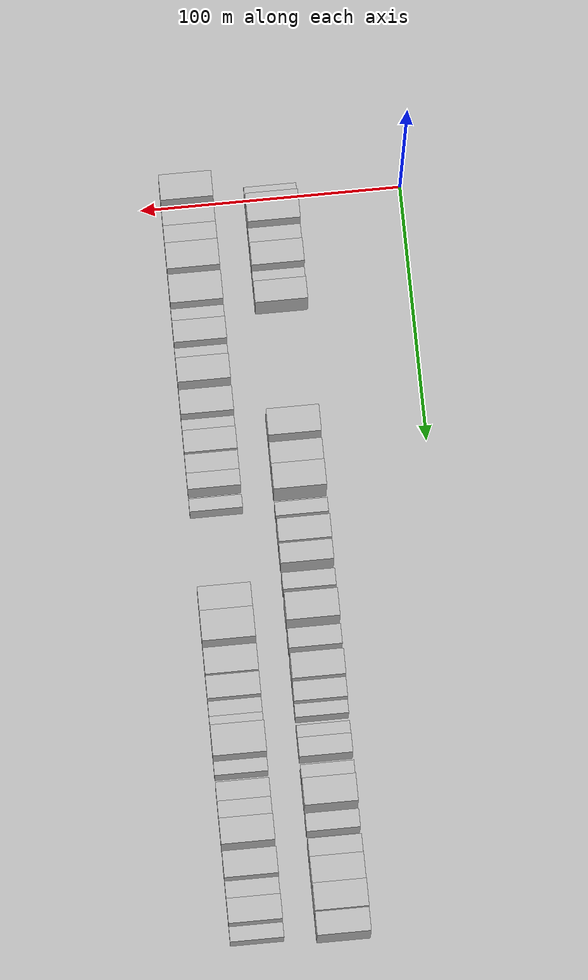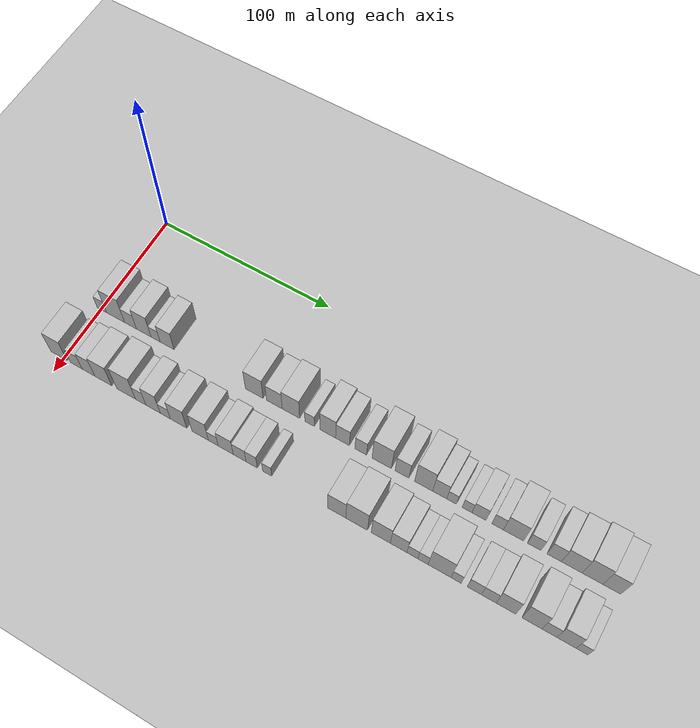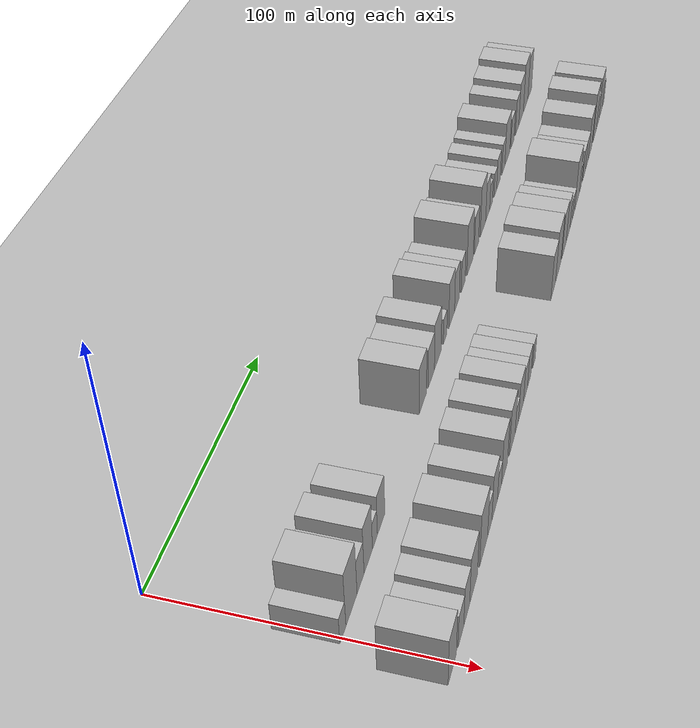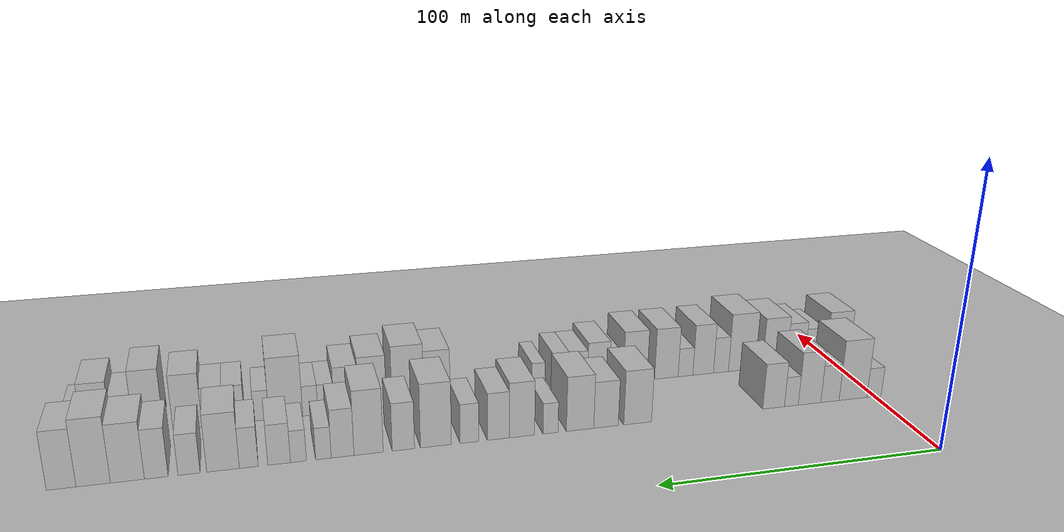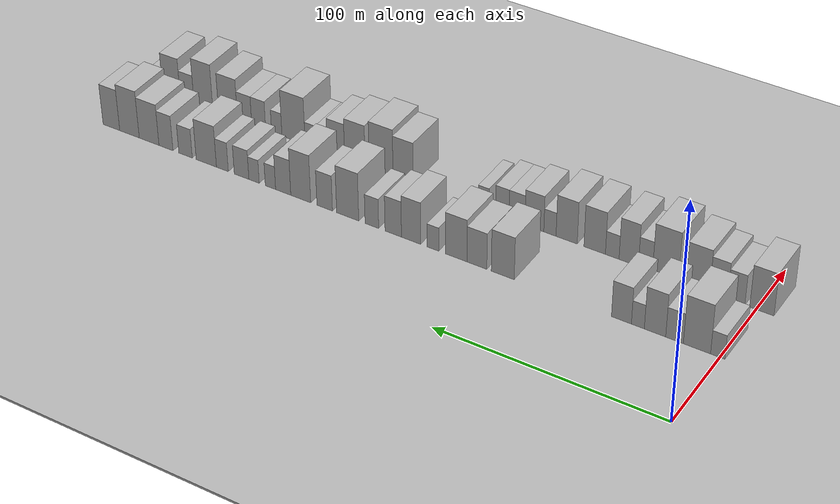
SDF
<sdf version="1.6">
 <world name="default">
  <include><name>ground_plane_1</name><uri>model://HANNAS_ground_plane</uri></include>
  <include>
   <name>ground_plane_2</name>
   <uri>model://HANNAS_ground_plane</uri>
   <pose>100 0 0  0 0 0</pose>
  </include>
  <model name="building_33">
   <static>1</static>
   <pose>50.0000 0.7738 0 0.000000 0.000000 0.000000</pose>
   <link name="link">
    <pose>0 0 6.00 0 0 0</pose>
    <collision name="collision"><geometry><box><size>20.0000 5.8419 12.0000</size></box></geometry></collision>
    <visual name="visual">
     <cast_shadows>0</cast_shadows>
     <geometry><box><size>20.0000 5.8419 12.0000</size></box></geometry>
     <material>
      <script>
       <uri>model://HANNAS_wall/materials/scripts</uri>
       <uri>model://HANNAS_wall/materials/textures</uri>
       <name>vrc/HANNAS_wall</name>
      </script>
     </material>
    </visual>
   </link>
  </model>
  <model name="building_34">
   <static>1</static>
   <pose>50.0000 9.2958 0 0.000000 0.000000 0.000000</pose>
   <link name="link">
    <pose>0 0 12.00 0 0 0</pose>
    <collision name="collision"><geometry><box><size>20.0000 11.2023 24.0000</size></box></geometry></collision>
    <visual name="visual">
     <cast_shadows>0</cast_shadows>
     <geometry><box><size>20.0000 11.2023 24.0000</size></box></geometry>
     <material>
      <script>
       <uri>model://HANNAS_wall/materials/scripts</uri>
       <uri>model://HANNAS_wall/materials/textures</uri>
       <name>vrc/HANNAS_wall</name>
      </script>
     </material>
    </visual>
   </link>
  </model>
  <model name="building_35">
   <static>1</static>
   <pose>50.0000 18.5480 0 0.000000 0.000000 0.000000</pose>
   <link name="link">
    <pose>0 0 7.50 0 0 0</pose>
    <collision name="collision"><geometry><box><size>20.0000 7.3020 15.0000</size></box></geometry></collision>
    <visual name="visual">
     <cast_shadows>0</cast_shadows>
     <geometry><box><size>20.0000 7.3020 15.0000</size></box></geometry>
     <material>
      <script>
       <uri>model://HANNAS_wall/materials/scripts</uri>
       <uri>model://HANNAS_wall/materials/textures</uri>
       <name>vrc/HANNAS_wall</name>
      </script>
     </material>
    </visual>
   </link>
  </model>
  <model name="building_36">
   <static>1</static>
   <pose>50.0000 26.6706 0 0.000000 0.000000 0.000000</pose>
   <link name="link">
    <pose>0 0 10.50 0 0 0</pose>
    <collision name="collision"><geometry><box><size>20.0000 8.9432 21.0000</size></box></geometry></collision>
    <visual name="visual">
     <cast_shadows>0</cast_shadows>
     <geometry><box><size>20.0000 8.9432 21.0000</size></box></geometry>
     <material>
      <script>
       <uri>model://HANNAS_wall/materials/scripts</uri>
       <uri>model://HANNAS_wall/materials/textures</uri>
       <name>vrc/HANNAS_wall</name>
      </script>
     </material>
    </visual>
   </link>
  </model>
  <model name="building_37">
   <static>1</static>
   <pose>50.0000 33.8603 0 0.000000 0.000000 0.000000</pose>
   <link name="link">
    <pose>0 0 6.00 0 0 0</pose>
    <collision name="collision"><geometry><box><size>20.0000 5.4363 12.0000</size></box></geometry></collision>
    <visual name="visual">
     <cast_shadows>0</cast_shadows>
     <geometry><box><size>20.0000 5.4363 12.0000</size></box></geometry>
     <material>
      <script>
       <uri>model://HANNAS_wall/materials/scripts</uri>
       <uri>model://HANNAS_wall/materials/textures</uri>
       <name>vrc/HANNAS_wall</name>
      </script>
     </material>
    </visual>
   </link>
  </model>
  <model name="building_38">
   <static>1</static>
   <pose>50.0000 40.8012 0 0.000000 0.000000 0.000000</pose>
   <link name="link">
    <pose>0 0 9.00 0 0 0</pose>
    <collision name="collision"><geometry><box><size>20.0000 8.4455 18.0000</size></box></geometry></collision>
    <visual name="visual">
     <cast_shadows>0</cast_shadows>
     <geometry><box><size>20.0000 8.4455 18.0000</size></box></geometry>
     <material>
      <script>
       <uri>model://HANNAS_wall/materials/scripts</uri>
       <uri>model://HANNAS_wall/materials/textures</uri>
       <name>vrc/HANNAS_wall</name>
      </script>
     </material>
    </visual>
   </link>
  </model>
  <model name="building_39">
   <static>1</static>
   <pose>50.0000 92.3838 0 0.000000 0.000000 0.000000</pose>
   <link name="link">
    <pose>0 0 10.50 0 0 0</pose>
    <collision name="collision"><geometry><box><size>20.0000 10.2399 21.0000</size></box></geometry></collision>
    <visual name="visual">
     <cast_shadows>0</cast_shadows>
     <geometry><box><size>20.0000 10.2399 21.0000</size></box></geometry>
     <material>
      <script>
       <uri>model://HANNAS_wall/materials/scripts</uri>
       <uri>model://HANNAS_wall/materials/textures</uri>
       <name>vrc/HANNAS_wall</name>
      </script>
     </material>
    </visual>
   </link>
  </model>
  <model name="building_40">
   <static>1</static>
   <pose>50.0000 103.9644 0 0.000000 0.000000 0.000000</pose>
   <link name="link">
    <pose>0 0 9.00 0 0 0</pose>
    <collision name="collision"><geometry><box><size>20.0000 8.9212 18.0000</size></box></geometry></collision>
    <visual name="visual">
     <cast_shadows>0</cast_shadows>
     <geometry><box><size>20.0000 8.9212 18.0000</size></box></geometry>
     <material>
      <script>
       <uri>model://HANNAS_wall/materials/scripts</uri>
       <uri>model://HANNAS_wall/materials/textures</uri>
       <name>vrc/HANNAS_wall</name>
      </script>
     </material>
    </visual>
   </link>
  </model>
  <model name="building_41">
   <static>1</static>
   <pose>50.0000 113.3632 0 0.000000 0.000000 0.000000</pose>
   <link name="link">
    <pose>0 0 10.50 0 0 0</pose>
    <collision name="collision"><geometry><box><size>20.0000 9.8763 21.0000</size></box></geometry></collision>
    <visual name="visual">
     <cast_shadows>0</cast_shadows>
     <geometry><box><size>20.0000 9.8763 21.0000</size></box></geometry>
     <material>
      <script>
       <uri>model://HANNAS_wall/materials/scripts</uri>
       <uri>model://HANNAS_wall/materials/textures</uri>
       <name>vrc/HANNAS_wall</name>
      </script>
     </material>
    </visual>
   </link>
  </model>
  <model name="building_42">
   <static>1</static>
   <pose>50.0000 123.9783 0 0.000000 0.000000 0.000000</pose>
   <link name="link">
    <pose>0 0 6.00 0 0 0</pose>
    <collision name="collision"><geometry><box><size>20.0000 5.3540 12.0000</size></box></geometry></collision>
    <visual name="visual">
     <cast_shadows>0</cast_shadows>
     <geometry><box><size>20.0000 5.3540 12.0000</size></box></geometry>
     <material>
      <script>
       <uri>model://HANNAS_wall/materials/scripts</uri>
       <uri>model://HANNAS_wall/materials/textures</uri>
       <name>vrc/HANNAS_wall</name>
      </script>
     </material>
    </visual>
   </link>
  </model>
  <model name="building_43">
   <static>1</static>
   <pose>50.0000 134.0967 0 0.000000 0.000000 0.000000</pose>
   <link name="link">
    <pose>0 0 10.50 0 0 0</pose>
    <collision name="collision"><geometry><box><size>20.0000 8.8829 21.0000</size></box></geometry></collision>
    <visual name="visual">
     <cast_shadows>0</cast_shadows>
     <geometry><box><size>20.0000 8.8829 21.0000</size></box></geometry>
     <material>
      <script>
       <uri>model://HANNAS_wall/materials/scripts</uri>
       <uri>model://HANNAS_wall/materials/textures</uri>
       <name>vrc/HANNAS_wall</name>
      </script>
     </material>
    </visual>
   </link>
  </model>
  <model name="building_44">
   <static>1</static>
   <pose>50.0000 142.3680 0 0.000000 0.000000 0.000000</pose>
   <link name="link">
    <pose>0 0 9.00 0 0 0</pose>
    <collision name="collision"><geometry><box><size>20.0000 7.6595 18.0000</size></box></geometry></collision>
    <visual name="visual">
     <cast_shadows>0</cast_shadows>
     <geometry><box><size>20.0000 7.6595 18.0000</size></box></geometry>
     <material>
      <script>
       <uri>model://HANNAS_wall/materials/scripts</uri>
       <uri>model://HANNAS_wall/materials/textures</uri>
       <name>vrc/HANNAS_wall</name>
      </script>
     </material>
    </visual>
   </link>
  </model>
  <model name="building_45">
   <static>1</static>
   <pose>50.0000 152.4048 0 0.000000 0.000000 0.000000</pose>
   <link name="link">
    <pose>0 0 7.50 0 0 0</pose>
    <collision name="collision"><geometry><box><size>20.0000 6.4142 15.0000</size></box></geometry></collision>
    <visual name="visual">
     <cast_shadows>0</cast_shadows>
     <geometry><box><size>20.0000 6.4142 15.0000</size></box></geometry>
     <material>
      <script>
       <uri>model://HANNAS_wall/materials/scripts</uri>
       <uri>model://HANNAS_wall/materials/textures</uri>
       <name>vrc/HANNAS_wall</name>
      </script>
     </material>
    </visual>
   </link>
  </model>
  <model name="building_46">
   <static>1</static>
   <pose>50.0000 163.8818 0 0.000000 0.000000 0.000000</pose>
   <link name="link">
    <pose>0 0 12.00 0 0 0</pose>
    <collision name="collision"><geometry><box><size>20.0000 10.5398 24.0000</size></box></geometry></collision>
    <visual name="visual">
     <cast_shadows>0</cast_shadows>
     <geometry><box><size>20.0000 10.5398 24.0000</size></box></geometry>
     <material>
      <script>
       <uri>model://HANNAS_wall/materials/scripts</uri>
       <uri>model://HANNAS_wall/materials/textures</uri>
       <name>vrc/HANNAS_wall</name>
      </script>
     </material>
    </visual>
   </link>
  </model>
  <model name="building_47">
   <static>1</static>
   <pose>50.0000 174.8968 0 0.000000 0.000000 0.000000</pose>
   <link name="link">
    <pose>0 0 9.00 0 0 0</pose>
    <collision name="collision"><geometry><box><size>20.0000 7.4903 18.0000</size></box></geometry></collision>
    <visual name="visual">
     <cast_shadows>0</cast_shadows>
     <geometry><box><size>20.0000 7.4903 18.0000</size></box></geometry>
     <material>
      <script>
       <uri>model://HANNAS_wall/materials/scripts</uri>
       <uri>model://HANNAS_wall/materials/textures</uri>
       <name>vrc/HANNAS_wall</name>
      </script>
     </material>
    </visual>
   </link>
  </model>
  <model name="building_48">
   <static>1</static>
   <pose>50.0000 186.5020 0 0.000000 0.000000 0.000000</pose>
   <link name="link">
    <pose>0 0 12.00 0 0 0</pose>
    <collision name="collision"><geometry><box><size>20.0000 9.7200 24.0000</size></box></geometry></collision>
    <visual name="visual">
     <cast_shadows>0</cast_shadows>
     <geometry><box><size>20.0000 9.7200 24.0000</size></box></geometry>
     <material>
      <script>
       <uri>model://HANNAS_wall/materials/scripts</uri>
       <uri>model://HANNAS_wall/materials/textures</uri>
       <name>vrc/HANNAS_wall</name>
      </script>
     </material>
    </visual>
   </link>
  </model>
  <model name="building_49">
   <static>1</static>
   <pose>50.0000 195.0931 0 0.000000 0.000000 0.000000</pose>
   <link name="link">
    <pose>0 0 9.00 0 0 0</pose>
    <collision name="collision"><geometry><box><size>20.0000 7.4622 18.0000</size></box></geometry></collision>
    <visual name="visual">
     <cast_shadows>0</cast_shadows>
     <geometry><box><size>20.0000 7.4622 18.0000</size></box></geometry>
     <material>
      <script>
       <uri>model://HANNAS_wall/materials/scripts</uri>
       <uri>model://HANNAS_wall/materials/textures</uri>
       <name>vrc/HANNAS_wall</name>
      </script>
     </material>
    </visual>
   </link>
  </model>
  <model name="building_50">
   <static>1</static>
   <pose>50.0000 201.3708 0 0.000000 0.000000 0.000000</pose>
   <link name="link">
    <pose>0 0 6.00 0 0 0</pose>
    <collision name="collision"><geometry><box><size>20.0000 5.0933 12.0000</size></box></geometry></collision>
    <visual name="visual">
     <cast_shadows>0</cast_shadows>
     <geometry><box><size>20.0000 5.0933 12.0000</size></box></geometry>
     <material>
      <script>
       <uri>model://HANNAS_wall/materials/scripts</uri>
       <uri>model://HANNAS_wall/materials/textures</uri>
       <name>vrc/HANNAS_wall</name>
      </script>
     </material>
    </visual>
   </link>
  </model>
  <model name="building_51">
   <static>1</static>
   <pose>50.0000 209.4964 0 0.000000 0.000000 0.000000</pose>
   <link name="link">
    <pose>0 0 6.00 0 0 0</pose>
    <collision name="collision"><geometry><box><size>20.0000 5.1578 12.0000</size></box></geometry></collision>
    <visual name="visual">
     <cast_shadows>0</cast_shadows>
     <geometry><box><size>20.0000 5.1578 12.0000</size></box></geometry>
     <material>
      <script>
       <uri>model://HANNAS_wall/materials/scripts</uri>
       <uri>model://HANNAS_wall/materials/textures</uri>
       <name>vrc/HANNAS_wall</name>
      </script>
     </material>
    </visual>
   </link>
  </model>
  <model name="building_52">
   <static>1</static>
   <pose>50.0000 215.7255 0 0.000000 0.000000 0.000000</pose>
   <link name="link">
    <pose>0 0 7.50 0 0 0</pose>
    <collision name="collision"><geometry><box><size>20.0000 7.3004 15.0000</size></box></geometry></collision>
    <visual name="visual">
     <cast_shadows>0</cast_shadows>
     <geometry><box><size>20.0000 7.3004 15.0000</size></box></geometry>
     <material>
      <script>
       <uri>model://HANNAS_wall/materials/scripts</uri>
       <uri>model://HANNAS_wall/materials/textures</uri>
       <name>vrc/HANNAS_wall</name>
      </script>
     </material>
    </visual>
   </link>
  </model>
  <model name="building_53">
   <static>1</static>
   <pose>50.0000 225.3765 0 0.000000 0.000000 0.000000</pose>
   <link name="link">
    <pose>0 0 7.50 0 0 0</pose>
    <collision name="collision"><geometry><box><size>20.0000 6.0014 15.0000</size></box></geometry></collision>
    <visual name="visual">
     <cast_shadows>0</cast_shadows>
     <geometry><box><size>20.0000 6.0014 15.0000</size></box></geometry>
     <material>
      <script>
       <uri>model://HANNAS_wall/materials/scripts</uri>
       <uri>model://HANNAS_wall/materials/textures</uri>
       <name>vrc/HANNAS_wall</name>
      </script>
     </material>
    </visual>
   </link>
  </model>
  <model name="building_54">
   <static>1</static>
   <pose>50.0000 233.5228 0 0.000000 0.000000 0.000000</pose>
   <link name="link">
    <pose>0 0 10.50 0 0 0</pose>
    <collision name="collision"><geometry><box><size>20.0000 10.2913 21.0000</size></box></geometry></collision>
    <visual name="visual">
     <cast_shadows>0</cast_shadows>
     <geometry><box><size>20.0000 10.2913 21.0000</size></box></geometry>
     <material>
      <script>
       <uri>model://HANNAS_wall/materials/scripts</uri>
       <uri>model://HANNAS_wall/materials/textures</uri>
       <name>vrc/HANNAS_wall</name>
      </script>
     </material>
    </visual>
   </link>
  </model>
  <model name="building_55">
   <static>1</static>
   <pose>50.0000 244.1194 0 0.000000 0.000000 0.000000</pose>
   <link name="link">
    <pose>0 0 7.50 0 0 0</pose>
    <collision name="collision"><geometry><box><size>20.0000 6.9017 15.0000</size></box></geometry></collision>
    <visual name="visual">
     <cast_shadows>0</cast_shadows>
     <geometry><box><size>20.0000 6.9017 15.0000</size></box></geometry>
     <material>
      <script>
       <uri>model://HANNAS_wall/materials/scripts</uri>
       <uri>model://HANNAS_wall/materials/textures</uri>
       <name>vrc/HANNAS_wall</name>
      </script>
     </material>
    </visual>
   </link>
  </model>
  <model name="building_56">
   <static>1</static>
   <pose>50.0000 254.2113 0 0.000000 0.000000 0.000000</pose>
   <link name="link">
    <pose>0 0 9.00 0 0 0</pose>
    <collision name="collision"><geometry><box><size>20.0000 7.2821 18.0000</size></box></geometry></collision>
    <visual name="visual">
     <cast_shadows>0</cast_shadows>
     <geometry><box><size>20.0000 7.2821 18.0000</size></box></geometry>
     <material>
      <script>
       <uri>model://HANNAS_wall/materials/scripts</uri>
       <uri>model://HANNAS_wall/materials/textures</uri>
       <name>vrc/HANNAS_wall</name>
      </script>
     </material>
    </visual>
   </link>
  </model>
  <model name="building_57">
   <static>1</static>
   <pose>50.0000 263.0016 0 0.000000 0.000000 0.000000</pose>
   <link name="link">
    <pose>0 0 10.50 0 0 0</pose>
    <collision name="collision"><geometry><box><size>20.0000 10.2986 21.0000</size></box></geometry></collision>
    <visual name="visual">
     <cast_shadows>0</cast_shadows>
     <geometry><box><size>20.0000 10.2986 21.0000</size></box></geometry>
     <material>
      <script>
       <uri>model://HANNAS_wall/materials/scripts</uri>
       <uri>model://HANNAS_wall/materials/textures</uri>
       <name>vrc/HANNAS_wall</name>
      </script>
     </material>
    </visual>
   </link>
  </model>
  <model name="building_58">
   <static>1</static>
   <pose>50.0000 273.3004 0 0.000000 0.000000 0.000000</pose>
   <link name="link">
    <pose>0 0 12.00 0 0 0</pose>
    <collision name="collision"><geometry><box><size>20.0000 10.2991 24.0000</size></box></geometry></collision>
    <visual name="visual">
     <cast_shadows>0</cast_shadows>
     <geometry><box><size>20.0000 10.2991 24.0000</size></box></geometry>
     <material>
      <script>
       <uri>model://HANNAS_wall/materials/scripts</uri>
       <uri>model://HANNAS_wall/materials/textures</uri>
       <name>vrc/HANNAS_wall</name>
      </script>
     </material>
    </visual>
   </link>
  </model>
  <model name="building_59">
   <static>1</static>
   <pose>50.0000 282.8571 0 0.000000 0.000000 0.000000</pose>
   <link name="link">
    <pose>0 0 10.50 0 0 0</pose>
    <collision name="collision"><geometry><box><size>20.0000 8.8142 21.0000</size></box></geometry></collision>
    <visual name="visual">
     <cast_shadows>0</cast_shadows>
     <geometry><box><size>20.0000 8.8142 21.0000</size></box></geometry>
     <material>
      <script>
       <uri>model://HANNAS_wall/materials/scripts</uri>
       <uri>model://HANNAS_wall/materials/textures</uri>
       <name>vrc/HANNAS_wall</name>
      </script>
     </material>
    </visual>
   </link>
  </model>
  <model name="building_86">
   <static>1</static>
   <pose>82.0000 -2.4315 0 0.000000 0.000000 0.000000</pose>
   <link name="link">
    <pose>0 0 10.50 0 0 0</pose>
    <collision name="collision"><geometry><box><size>20.0000 10.0685 21.0000</size></box></geometry></collision>
    <visual name="visual">
     <cast_shadows>0</cast_shadows>
     <geometry><box><size>20.0000 10.0685 21.0000</size></box></geometry>
     <material>
      <script>
       <uri>model://HANNAS_wall/materials/scripts</uri>
       <uri>model://HANNAS_wall/materials/textures</uri>
       <name>vrc/HANNAS_wall</name>
      </script>
     </material>
    </visual>
   </link>
  </model>
  <model name="building_87">
   <static>1</static>
   <pose>82.0000 8.1868 0 0.000000 0.000000 0.000000</pose>
   <link name="link">
    <pose>0 0 7.50 0 0 0</pose>
    <collision name="collision"><geometry><box><size>20.0000 7.1680 15.0000</size></box></geometry></collision>
    <visual name="visual">
     <cast_shadows>0</cast_shadows>
     <geometry><box><size>20.0000 7.1680 15.0000</size></box></geometry>
     <material>
      <script>
       <uri>model://HANNAS_wall/materials/scripts</uri>
       <uri>model://HANNAS_wall/materials/textures</uri>
       <name>vrc/HANNAS_wall</name>
      </script>
     </material>
    </visual>
   </link>
  </model>
  <model name="building_88">
   <static>1</static>
   <pose>82.0000 15.5689 0 0.000000 0.000000 0.000000</pose>
   <link name="link">
    <pose>0 0 9.00 0 0 0</pose>
    <collision name="collision"><geometry><box><size>20.0000 7.5963 18.0000</size></box></geometry></collision>
    <visual name="visual">
     <cast_shadows>0</cast_shadows>
     <geometry><box><size>20.0000 7.5963 18.0000</size></box></geometry>
     <material>
      <script>
       <uri>model://HANNAS_wall/materials/scripts</uri>
       <uri>model://HANNAS_wall/materials/textures</uri>
       <name>vrc/HANNAS_wall</name>
      </script>
     </material>
    </visual>
   </link>
  </model>
  <model name="building_89">
   <static>1</static>
   <pose>82.0000 24.4899 0 0.000000 0.000000 0.000000</pose>
   <link name="link">
    <pose>0 0 10.50 0 0 0</pose>
    <collision name="collision"><geometry><box><size>20.0000 10.2457 21.0000</size></box></geometry></collision>
    <visual name="visual">
     <cast_shadows>0</cast_shadows>
     <geometry><box><size>20.0000 10.2457 21.0000</size></box></geometry>
     <material>
      <script>
       <uri>model://HANNAS_wall/materials/scripts</uri>
       <uri>model://HANNAS_wall/materials/textures</uri>
       <name>vrc/HANNAS_wall</name>
      </script>
     </material>
    </visual>
   </link>
  </model>
  <model name="building_90">
   <static>1</static>
   <pose>82.0000 38.2069 0 0.000000 0.000000 0.000000</pose>
   <link name="link">
    <pose>0 0 12.00 0 0 0</pose>
    <collision name="collision"><geometry><box><size>20.0000 11.1884 24.0000</size></box></geometry></collision>
    <visual name="visual">
     <cast_shadows>0</cast_shadows>
     <geometry><box><size>20.0000 11.1884 24.0000</size></box></geometry>
     <material>
      <script>
       <uri>model://HANNAS_wall/materials/scripts</uri>
       <uri>model://HANNAS_wall/materials/textures</uri>
       <name>vrc/HANNAS_wall</name>
      </script>
     </material>
    </visual>
   </link>
  </model>
  <model name="building_91">
   <static>1</static>
   <pose>82.0000 46.8741 0 0.000000 0.000000 0.000000</pose>
   <link name="link">
    <pose>0 0 7.50 0 0 0</pose>
    <collision name="collision"><geometry><box><size>20.0000 6.1459 15.0000</size></box></geometry></collision>
    <visual name="visual">
     <cast_shadows>0</cast_shadows>
     <geometry><box><size>20.0000 6.1459 15.0000</size></box></geometry>
     <material>
      <script>
       <uri>model://HANNAS_wall/materials/scripts</uri>
       <uri>model://HANNAS_wall/materials/textures</uri>
       <name>vrc/HANNAS_wall</name>
      </script>
     </material>
    </visual>
   </link>
  </model>
  <model name="building_92">
   <static>1</static>
   <pose>82.0000 54.1813 0 0.000000 0.000000 0.000000</pose>
   <link name="link">
    <pose>0 0 10.50 0 0 0</pose>
    <collision name="collision"><geometry><box><size>20.0000 8.4685 21.0000</size></box></geometry></collision>
    <visual name="visual">
     <cast_shadows>0</cast_shadows>
     <geometry><box><size>20.0000 8.4685 21.0000</size></box></geometry>
     <material>
      <script>
       <uri>model://HANNAS_wall/materials/scripts</uri>
       <uri>model://HANNAS_wall/materials/textures</uri>
       <name>vrc/HANNAS_wall</name>
      </script>
     </material>
    </visual>
   </link>
  </model>
  <model name="building_93">
   <static>1</static>
   <pose>82.0000 61.4146 0 0.000000 0.000000 0.000000</pose>
   <link name="link">
    <pose>0 0 6.00 0 0 0</pose>
    <collision name="collision"><geometry><box><size>20.0000 5.9982 12.0000</size></box></geometry></collision>
    <visual name="visual">
     <cast_shadows>0</cast_shadows>
     <geometry><box><size>20.0000 5.9982 12.0000</size></box></geometry>
     <material>
      <script>
       <uri>model://HANNAS_wall/materials/scripts</uri>
       <uri>model://HANNAS_wall/materials/textures</uri>
       <name>vrc/HANNAS_wall</name>
      </script>
     </material>
    </visual>
   </link>
  </model>
  <model name="building_94">
   <static>1</static>
   <pose>82.0000 69.1726 0 0.000000 0.000000 0.000000</pose>
   <link name="link">
    <pose>0 0 10.50 0 0 0</pose>
    <collision name="collision"><geometry><box><size>20.0000 9.5178 21.0000</size></box></geometry></collision>
    <visual name="visual">
     <cast_shadows>0</cast_shadows>
     <geometry><box><size>20.0000 9.5178 21.0000</size></box></geometry>
     <material>
      <script>
       <uri>model://HANNAS_wall/materials/scripts</uri>
       <uri>model://HANNAS_wall/materials/textures</uri>
       <name>vrc/HANNAS_wall</name>
      </script>
     </material>
    </visual>
   </link>
  </model>
  <model name="building_95">
   <static>1</static>
   <pose>82.0000 81.6844 0 0.000000 0.000000 0.000000</pose>
   <link name="link">
    <pose>0 0 10.50 0 0 0</pose>
    <collision name="collision"><geometry><box><size>20.0000 9.5059 21.0000</size></box></geometry></collision>
    <visual name="visual">
     <cast_shadows>0</cast_shadows>
     <geometry><box><size>20.0000 9.5059 21.0000</size></box></geometry>
     <material>
      <script>
       <uri>model://HANNAS_wall/materials/scripts</uri>
       <uri>model://HANNAS_wall/materials/textures</uri>
       <name>vrc/HANNAS_wall</name>
      </script>
     </material>
    </visual>
   </link>
  </model>
  <model name="building_96">
   <static>1</static>
   <pose>82.0000 89.2003 0 0.000000 0.000000 0.000000</pose>
   <link name="link">
    <pose>0 0 6.00 0 0 0</pose>
    <collision name="collision"><geometry><box><size>20.0000 5.5259 12.0000</size></box></geometry></collision>
    <visual name="visual">
     <cast_shadows>0</cast_shadows>
     <geometry><box><size>20.0000 5.5259 12.0000</size></box></geometry>
     <material>
      <script>
       <uri>model://HANNAS_wall/materials/scripts</uri>
       <uri>model://HANNAS_wall/materials/textures</uri>
       <name>vrc/HANNAS_wall</name>
      </script>
     </material>
    </visual>
   </link>
  </model>
  <model name="building_97">
   <static>1</static>
   <pose>82.0000 96.2660 0 0.000000 0.000000 0.000000</pose>
   <link name="link">
    <pose>0 0 9.00 0 0 0</pose>
    <collision name="collision"><geometry><box><size>20.0000 8.6054 18.0000</size></box></geometry></collision>
    <visual name="visual">
     <cast_shadows>0</cast_shadows>
     <geometry><box><size>20.0000 8.6054 18.0000</size></box></geometry>
     <material>
      <script>
       <uri>model://HANNAS_wall/materials/scripts</uri>
       <uri>model://HANNAS_wall/materials/textures</uri>
       <name>vrc/HANNAS_wall</name>
      </script>
     </material>
    </visual>
   </link>
  </model>
  <model name="building_98">
   <static>1</static>
   <pose>82.0000 104.1942 0 0.000000 0.000000 0.000000</pose>
   <link name="link">
    <pose>0 0 7.50 0 0 0</pose>
    <collision name="collision"><geometry><box><size>20.0000 7.2509 15.0000</size></box></geometry></collision>
    <visual name="visual">
     <cast_shadows>0</cast_shadows>
     <geometry><box><size>20.0000 7.2509 15.0000</size></box></geometry>
     <material>
      <script>
       <uri>model://HANNAS_wall/materials/scripts</uri>
       <uri>model://HANNAS_wall/materials/textures</uri>
       <name>vrc/HANNAS_wall</name>
      </script>
     </material>
    </visual>
   </link>
  </model>
  <model name="building_99">
   <static>1</static>
   <pose>82.0000 110.9539 0 0.000000 0.000000 0.000000</pose>
   <link name="link">
    <pose>0 0 7.50 0 0 0</pose>
    <collision name="collision"><geometry><box><size>20.0000 6.2685 15.0000</size></box></geometry></collision>
    <visual name="visual">
     <cast_shadows>0</cast_shadows>
     <geometry><box><size>20.0000 6.2685 15.0000</size></box></geometry>
     <material>
      <script>
       <uri>model://HANNAS_wall/materials/scripts</uri>
       <uri>model://HANNAS_wall/materials/textures</uri>
       <name>vrc/HANNAS_wall</name>
      </script>
     </material>
    </visual>
   </link>
  </model>
  <model name="building_100">
   <static>1</static>
   <pose>82.0000 119.5914 0 0.000000 0.000000 0.000000</pose>
   <link name="link">
    <pose>0 0 6.00 0 0 0</pose>
    <collision name="collision"><geometry><box><size>20.0000 5.0067 12.0000</size></box></geometry></collision>
    <visual name="visual">
     <cast_shadows>0</cast_shadows>
     <geometry><box><size>20.0000 5.0067 12.0000</size></box></geometry>
     <material>
      <script>
       <uri>model://HANNAS_wall/materials/scripts</uri>
       <uri>model://HANNAS_wall/materials/textures</uri>
       <name>vrc/HANNAS_wall</name>
      </script>
     </material>
    </visual>
   </link>
  </model>
  <model name="building_101">
   <static>1</static>
   <pose>82.0000 157.6806 0 0.000000 0.000000 0.000000</pose>
   <link name="link">
    <pose>0 0 10.50 0 0 0</pose>
    <collision name="collision"><geometry><box><size>20.0000 9.7239 21.0000</size></box></geometry></collision>
    <visual name="visual">
     <cast_shadows>0</cast_shadows>
     <geometry><box><size>20.0000 9.7239 21.0000</size></box></geometry>
     <material>
      <script>
       <uri>model://HANNAS_wall/materials/scripts</uri>
       <uri>model://HANNAS_wall/materials/textures</uri>
       <name>vrc/HANNAS_wall</name>
      </script>
     </material>
    </visual>
   </link>
  </model>
  <model name="building_102">
   <static>1</static>
   <pose>82.0000 168.3161 0 0.000000 0.000000 0.000000</pose>
   <link name="link">
    <pose>0 0 12.00 0 0 0</pose>
    <collision name="collision"><geometry><box><size>20.0000 11.5471 24.0000</size></box></geometry></collision>
    <visual name="visual">
     <cast_shadows>0</cast_shadows>
     <geometry><box><size>20.0000 11.5471 24.0000</size></box></geometry>
     <material>
      <script>
       <uri>model://HANNAS_wall/materials/scripts</uri>
       <uri>model://HANNAS_wall/materials/textures</uri>
       <name>vrc/HANNAS_wall</name>
      </script>
     </material>
    </visual>
   </link>
  </model>
  <model name="building_103">
   <static>1</static>
   <pose>82.0000 181.1308 0 0.000000 0.000000 0.000000</pose>
   <link name="link">
    <pose>0 0 10.50 0 0 0</pose>
    <collision name="collision"><geometry><box><size>20.0000 10.0822 21.0000</size></box></geometry></collision>
    <visual name="visual">
     <cast_shadows>0</cast_shadows>
     <geometry><box><size>20.0000 10.0822 21.0000</size></box></geometry>
     <material>
      <script>
       <uri>model://HANNAS_wall/materials/scripts</uri>
       <uri>model://HANNAS_wall/materials/textures</uri>
       <name>vrc/HANNAS_wall</name>
      </script>
     </material>
    </visual>
   </link>
  </model>
  <model name="building_104">
   <static>1</static>
   <pose>82.0000 190.5027 0 0.000000 0.000000 0.000000</pose>
   <link name="link">
    <pose>0 0 9.00 0 0 0</pose>
    <collision name="collision"><geometry><box><size>20.0000 8.6617 18.0000</size></box></geometry></collision>
    <visual name="visual">
     <cast_shadows>0</cast_shadows>
     <geometry><box><size>20.0000 8.6617 18.0000</size></box></geometry>
     <material>
      <script>
       <uri>model://HANNAS_wall/materials/scripts</uri>
       <uri>model://HANNAS_wall/materials/textures</uri>
       <name>vrc/HANNAS_wall</name>
      </script>
     </material>
    </visual>
   </link>
  </model>
  <model name="building_105">
   <static>1</static>
   <pose>82.0000 197.6837 0 0.000000 0.000000 0.000000</pose>
   <link name="link">
    <pose>0 0 6.00 0 0 0</pose>
    <collision name="collision"><geometry><box><size>20.0000 5.7004 12.0000</size></box></geometry></collision>
    <visual name="visual">
     <cast_shadows>0</cast_shadows>
     <geometry><box><size>20.0000 5.7004 12.0000</size></box></geometry>
     <material>
      <script>
       <uri>model://HANNAS_wall/materials/scripts</uri>
       <uri>model://HANNAS_wall/materials/textures</uri>
       <name>vrc/HANNAS_wall</name>
      </script>
     </material>
    </visual>
   </link>
  </model>
  <model name="building_106">
   <static>1</static>
   <pose>82.0000 203.2061 0 0.000000 0.000000 0.000000</pose>
   <link name="link">
    <pose>0 0 6.00 0 0 0</pose>
    <collision name="collision"><geometry><box><size>20.0000 5.3443 12.0000</size></box></geometry></collision>
    <visual name="visual">
     <cast_shadows>0</cast_shadows>
     <geometry><box><size>20.0000 5.3443 12.0000</size></box></geometry>
     <material>
      <script>
       <uri>model://HANNAS_wall/materials/scripts</uri>
       <uri>model://HANNAS_wall/materials/textures</uri>
       <name>vrc/HANNAS_wall</name>
      </script>
     </material>
    </visual>
   </link>
  </model>
  <model name="building_107">
   <static>1</static>
   <pose>82.0000 211.7546 0 0.000000 0.000000 0.000000</pose>
   <link name="link">
    <pose>0 0 12.00 0 0 0</pose>
    <collision name="collision"><geometry><box><size>20.0000 11.7527 24.0000</size></box></geometry></collision>
    <visual name="visual">
     <cast_shadows>0</cast_shadows>
     <geometry><box><size>20.0000 11.7527 24.0000</size></box></geometry>
     <material>
      <script>
       <uri>model://HANNAS_wall/materials/scripts</uri>
       <uri>model://HANNAS_wall/materials/textures</uri>
       <name>vrc/HANNAS_wall</name>
      </script>
     </material>
    </visual>
   </link>
  </model>
  <model name="building_108">
   <static>1</static>
   <pose>82.0000 220.2751 0 0.000000 0.000000 0.000000</pose>
   <link name="link">
    <pose>0 0 6.00 0 0 0</pose>
    <collision name="collision"><geometry><box><size>20.0000 5.2883 12.0000</size></box></geometry></collision>
    <visual name="visual">
     <cast_shadows>0</cast_shadows>
     <geometry><box><size>20.0000 5.2883 12.0000</size></box></geometry>
     <material>
      <script>
       <uri>model://HANNAS_wall/materials/scripts</uri>
       <uri>model://HANNAS_wall/materials/textures</uri>
       <name>vrc/HANNAS_wall</name>
      </script>
     </material>
    </visual>
   </link>
  </model>
  <model name="building_109">
   <static>1</static>
   <pose>82.0000 229.4991 0 0.000000 0.000000 0.000000</pose>
   <link name="link">
    <pose>0 0 7.50 0 0 0</pose>
    <collision name="collision"><geometry><box><size>20.0000 7.1597 15.0000</size></box></geometry></collision>
    <visual name="visual">
     <cast_shadows>0</cast_shadows>
     <geometry><box><size>20.0000 7.1597 15.0000</size></box></geometry>
     <material>
      <script>
       <uri>model://HANNAS_wall/materials/scripts</uri>
       <uri>model://HANNAS_wall/materials/textures</uri>
       <name>vrc/HANNAS_wall</name>
      </script>
     </material>
    </visual>
   </link>
  </model>
  <model name="building_110">
   <static>1</static>
   <pose>82.0000 236.7637 0 0.000000 0.000000 0.000000</pose>
   <link name="link">
    <pose>0 0 7.50 0 0 0</pose>
    <collision name="collision"><geometry><box><size>20.0000 7.3696 15.0000</size></box></geometry></collision>
    <visual name="visual">
     <cast_shadows>0</cast_shadows>
     <geometry><box><size>20.0000 7.3696 15.0000</size></box></geometry>
     <material>
      <script>
       <uri>model://HANNAS_wall/materials/scripts</uri>
       <uri>model://HANNAS_wall/materials/textures</uri>
       <name>vrc/HANNAS_wall</name>
      </script>
     </material>
    </visual>
   </link>
  </model>
  <model name="building_111">
   <static>1</static>
   <pose>82.0000 245.3545 0 0.000000 0.000000 0.000000</pose>
   <link name="link">
    <pose>0 0 10.50 0 0 0</pose>
    <collision name="collision"><geometry><box><size>20.0000 9.8119 21.0000</size></box></geometry></collision>
    <visual name="visual">
     <cast_shadows>0</cast_shadows>
     <geometry><box><size>20.0000 9.8119 21.0000</size></box></geometry>
     <material>
      <script>
       <uri>model://HANNAS_wall/materials/scripts</uri>
       <uri>model://HANNAS_wall/materials/textures</uri>
       <name>vrc/HANNAS_wall</name>
      </script>
     </material>
    </visual>
   </link>
  </model>
  <model name="building_112">
   <static>1</static>
   <pose>82.0000 258.2288 0 0.000000 0.000000 0.000000</pose>
   <link name="link">
    <pose>0 0 12.00 0 0 0</pose>
    <collision name="collision"><geometry><box><size>20.0000 9.9367 24.0000</size></box></geometry></collision>
    <visual name="visual">
     <cast_shadows>0</cast_shadows>
     <geometry><box><size>20.0000 9.9367 24.0000</size></box></geometry>
     <material>
      <script>
       <uri>model://HANNAS_wall/materials/scripts</uri>
       <uri>model://HANNAS_wall/materials/textures</uri>
       <name>vrc/HANNAS_wall</name>
      </script>
     </material>
    </visual>
   </link>
  </model>
  <model name="building_113">
   <static>1</static>
   <pose>82.0000 266.8247 0 0.000000 0.000000 0.000000</pose>
   <link name="link">
    <pose>0 0 7.50 0 0 0</pose>
    <collision name="collision"><geometry><box><size>20.0000 7.2552 15.0000</size></box></geometry></collision>
    <visual name="visual">
     <cast_shadows>0</cast_shadows>
     <geometry><box><size>20.0000 7.2552 15.0000</size></box></geometry>
     <material>
      <script>
       <uri>model://HANNAS_wall/materials/scripts</uri>
       <uri>model://HANNAS_wall/materials/textures</uri>
       <name>vrc/HANNAS_wall</name>
      </script>
     </material>
    </visual>
   </link>
  </model>
  <model name="building_114">
   <static>1</static>
   <pose>82.0000 275.1222 0 0.000000 0.000000 0.000000</pose>
   <link name="link">
    <pose>0 0 10.50 0 0 0</pose>
    <collision name="collision"><geometry><box><size>20.0000 9.3397 21.0000</size></box></geometry></collision>
    <visual name="visual">
     <cast_shadows>0</cast_shadows>
     <geometry><box><size>20.0000 9.3397 21.0000</size></box></geometry>
     <material>
      <script>
       <uri>model://HANNAS_wall/materials/scripts</uri>
       <uri>model://HANNAS_wall/materials/textures</uri>
       <name>vrc/HANNAS_wall</name>
      </script>
     </material>
    </visual>
   </link>
  </model>
  <model name="building_115">
   <static>1</static>
   <pose>82.0000 282.6213 0 0.000000 0.000000 0.000000</pose>
   <link name="link">
    <pose>0 0 6.00 0 0 0</pose>
    <collision name="collision"><geometry><box><size>20.0000 5.6585 12.0000</size></box></geometry></collision>
    <visual name="visual">
     <cast_shadows>0</cast_shadows>
     <geometry><box><size>20.0000 5.6585 12.0000</size></box></geometry>
     <material>
      <script>
       <uri>model://HANNAS_wall/materials/scripts</uri>
       <uri>model://HANNAS_wall/materials/textures</uri>
       <name>vrc/HANNAS_wall</name>
      </script>
     </material>
    </visual>
   </link>
  </model>
 </world>
</sdf>
